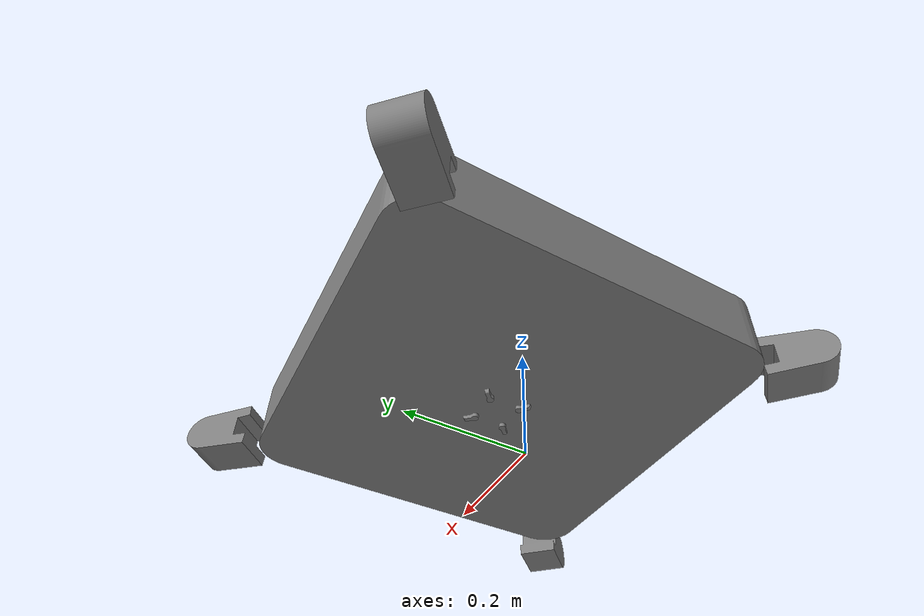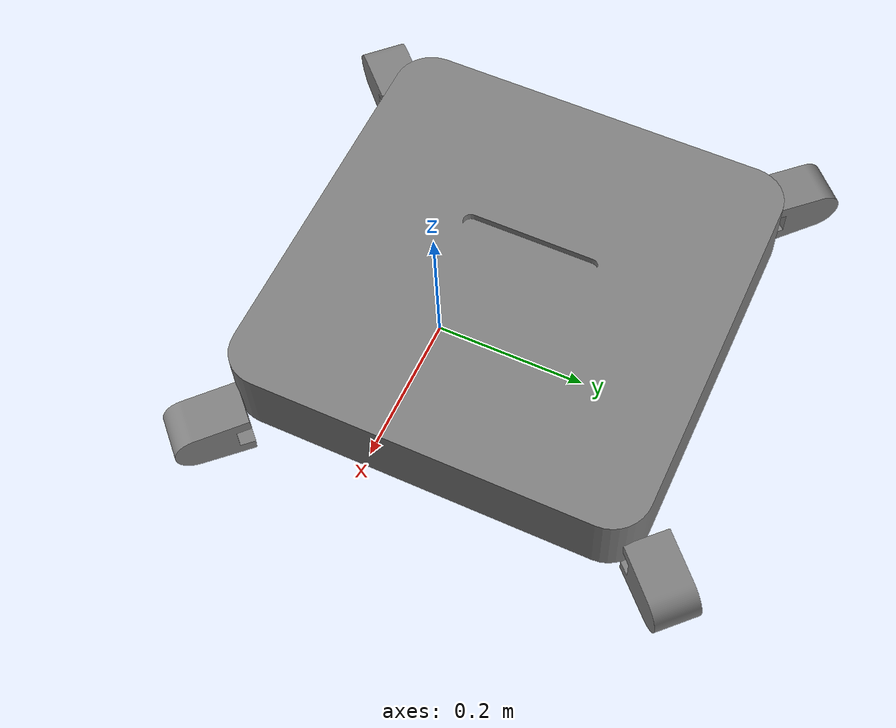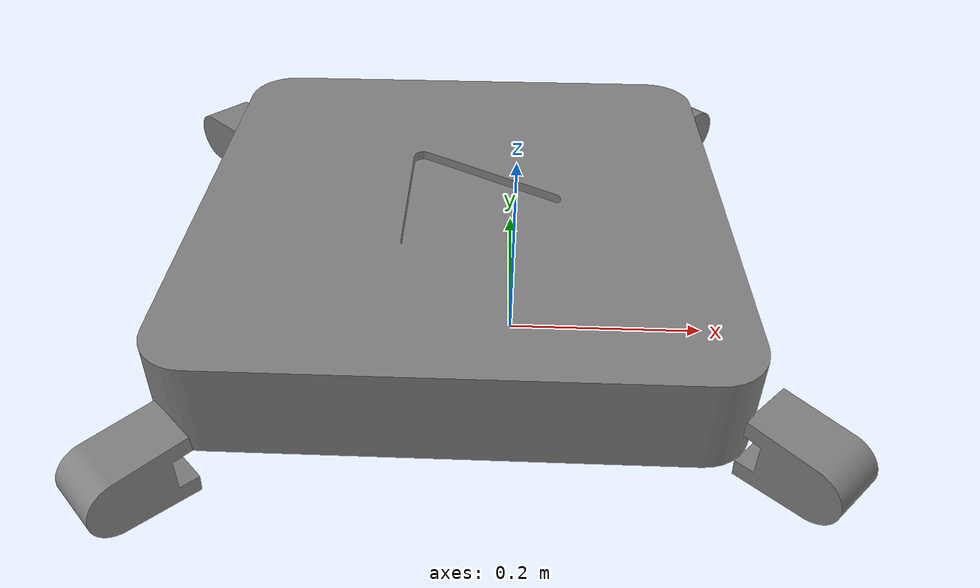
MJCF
<mujoco model="crawler">

    <compiler angle="radian" autolimits="true" />

    <default>

        <joint damping="0.0165" frictionloss="0.0005" solreflimit="0.04 1" solimplimit="0.9 0.95 0.005 0.5 2"/>

        <default class="visual">
            <geom type="mesh" density="0" contype="0" conaffinity="0" group="2"/>
        </default>

        <!--
            Generic collision default (fallback, not used directly).
        -->
        <default class="collision">
            <geom contype="0" conaffinity="0" group="3"/>
        </default>

        <default class="coxa_collision">
            <geom type="capsule" size="0.004" density="0" contype="0" conaffinity="0" group="3"/>
        </default>
        <default class="femur_collision">
            <geom type="capsule" size="0.004" density="0" contype="0" conaffinity="0" group="3"/>
        </default>
        <default class="tibia_collision">
            <geom type="capsule" size="0.004" density="0" contype="0" conaffinity="0" group="3"/>
        </default>
        <default class="foot_collision">
            <geom type="sphere" size="0.004" density="0" contype="0" conaffinity="0" group="3" friction="0.6 0.005 0.0001"/>
        </default>
    </default>

    <asset>
        <mesh name="base" file="assets/base.stl" scale="0.001 0.001 0.001" />
        <mesh name="coxa" file="assets/coxa.stl" scale="0.001 0.001 0.001" />
        <mesh name="femur" file="assets/femur.stl" scale="0.001 0.001 0.001" />
        <mesh name="tibia" file="assets/tibia.stl" scale="0.001 0.001 0.001" />
        <mesh name="foot" file="assets/foot.stl" scale="0.001 0.001 0.001" />
    </asset>

    <worldbody>
        <light directional="true" pos="-0.5 0.5 3" dir="0 0 -1" />

        <body name="base" pos="-0.054909463967939325 0.08112311588670991 0.008962584682672215" euler="1.0408340855860816e-17 0.0 1.5707963267948966">
            <freejoint/>
            <geom name="base_geom" class="visual" mesh="base" pos="0 0 0" euler="0 0 0" />
            <geom name="base_collision" type="box" size="0.03 0.03 0.006" pos="0 0 0.005" contype="1" conaffinity="1" group="3" density="0"/>
            <inertial mass="0.03183752205320129" pos="5.2041704279304066e-20 0.0 0.005" fullinertia="8.189823986042306e-06 8.189823986042374e-06 1.5849022604531328e-05 0.0 -6.69654402813043e-21 0.0" />
            <site name='imu' pos="0.0 0.0 0.005" size="0.0025"/>

            <!-- Leg 1 -->
            <body name="leg_1_coxa" pos="-0.032399494936611664 -0.032399494936611664 -0.0029999999999999927" euler="1.5707963267948966 0.7853981633974483 -0.0">
                <joint name="base_leg_1_coxa" axis="-7.359808400080175e-18 -1.0 -7.359808400080175e-18" pos="0.013999589980845425 0.0030004153173277797 2.461305977216484e-07" range="-0.785 0.785"/>
                <geom name="leg_1_coxa_geom" class="visual" mesh="coxa" pos="0 0 0" euler="0 0 0" />
                <geom name="leg_1_coxa_collision" class="coxa_collision"  fromto="0 0 0  0 0.01 0.009"/>
                <inertial mass="0.0016636915418405342" pos="0.005402213314214328 0.0036464257221408693 2.6836994660080788e-20" fullinertia="4.586889185531361e-08 7.612500620758773e-08 1.0868793704222074e-07 3.049707004869702e-08 -1.0234594336425319e-22 1.8584872267202095e-22" />

                <body name="leg_1_femur" pos="0.0 0.01 0.008999999999999979" euler="-3.141592653589793 -5.416677968589072e-35 -3.141592653589793">
                    <joint name="leg_1_coxa_leg_1_femur" axis="0.0 -7.359810677565174e-18 -1.0000003094489511" pos="-2.899269141557782e-07 4.153173277822884e-07 0.006000206903608923" range="-1.571 1.571"/>
                    <geom name="leg_1_femur_geom" class="visual" mesh="femur" pos="0 0 0" euler="0 0 0"/>
                    <geom name="leg_1_femur_collision" class="femur_collision" fromto="0 0 0  0.040 0.005 0.012"/>
                    <inertial mass="0.0030435132319207776" pos="0.019999999999999962 -5.957195584254965e-20 0.0029999999999999975" fullinertia="3.3452497395266803e-08 5.936577901635802e-07 6.088492081673176e-07 -6.65363663241859e-23 2.0514079191315086e-22 -1.6834083995002578e-22" />

                    <body name="leg_1_tibia" pos="0.040000000000000036 0.004999999999999983 0.012000000000000033" euler="3.141592653589793 5.990253684472967e-34 1.5707963267948968">
                        <joint name="leg_1_femur_leg_1_tibia" axis="-3.925232361368103e-17 0.0 -1.0000003094489525" pos="0.004999584682672212 -3.357802766898806e-08 0.006000500203172275" range="-2.356 2.356"/>
                        <geom name="leg_1_tibia_geom" class="visual" mesh="tibia" pos="0 0 0" euler="0 0 0" />
                        <geom name="leg_1_tibia_collision" class="tibia_collision" fromto="0 0 0  0.004 -0.020 0.0024"/>
                        <inertial mass="0.0019283986370316592" pos="0.005000000000000001 -0.012764398664719852 0.0030000000000000027" fullinertia="2.1467634727372854e-07 1.7016537126271533e-08 2.201224925778106e-07 1.354676878604395e-22 -2.991081696422713e-23 2.0514079191315086e-22" />
                        <body name="leg_1_foot" pos="-8.881784197001253e-18 -2.220446049250313e-18 0.0" euler="1.5407439555097878e-33 -3.404814103916397e-17 -0.0">
                            <site name="leg_1_foot_site" pos="0.005 -0.035 0.003" size="0.004" rgba="1.0 0.0 0.0 0.0"/>
                            <geom name="leg_1_foot_geom" class="visual" mesh="foot" pos="0 0 0" euler="0 0 0" />
                            <geom name="leg_1_foot_collision" class="foot_collision"  pos="0.005 -0.035 0.003"/>
                            <inertial mass="0.0001920703606744696" pos="0.005000000000000003 -0.03479747916365943 0.0030000000000000027" fullinertia="1.1046714905624203e-09 1.199351575527259e-09 1.1516009020429307e-09 -2.22920568893446e-23 -3.605749637338491e-24 -6.617444900424221e-24" />
                        </body>
                    </body>
                </body>
            </body>

            <!-- Leg 2 -->
            <body name="leg_2_coxa" pos="-0.03296204818108482 0.03296204818108482 -0.0029999999999999905" euler="1.5707963267948966 -0.7853981633974483 -0.0">
                <joint name="base_leg_2_coxa" axis="-7.359808400080175e-18 -1.0 7.359808400080175e-18" pos="0.014795816558488634 0.003000415317327777 4.1001915457130346e-07" range="-0.785 0.785"/>
                <geom name="leg_2_coxa_geom" class="visual" mesh="coxa" pos="0 0 0" euler="0 0 0" />
                <geom name="leg_2_coxa_collision" class="coxa_collision"  fromto="0 0 0  0 0.01 0.009"/>
                <inertial mass="0.0016636915418405342" pos="0.005402213314214328 0.003646425722140868 -2.6836994660080776e-20" fullinertia="4.5868891855313303e-08 7.61250062075852e-08 1.0868793704222127e-07 3.0497070048696607e-08 -2.244525923222308e-25 1.5164096724961434e-22" />

                <body name="leg_2_femur" pos="4.440892098500626e-18 0.009999999999999998 0.008999999999999985" euler="-3.141592653589793 5.416677968589089e-35 -3.141592653589793">
                    <joint name="leg_2_coxa_leg_2_femur" axis="1.1102230246251565e-16 -7.359810677565137e-18 -1.0000003094489505" pos="-3.1426894131231914e-07 4.153173277822884e-07 0.006000043015052069" range="-1.571 1.571"/>
                    <geom name="leg_2_femur_geom" class="visual" mesh="femur" pos="0 0 0" euler="0 0 0" />
                    <geom name="leg_2_femur_collision" class="femur_collision" fromto="0 0 0  0.040 0.005 0.012"/>
                    <inertial mass="0.0030435132319207776" pos="0.01999999999999997 3.945200773885174e-19 0.0029999999999999905" fullinertia="3.3452497395270536e-08 5.936577901635853e-07 6.088492081673166e-07 -3.294230438681108e-22 -3.894366323899654e-21 -7.398282050074556e-22" />

                    <body name="leg_2_tibia" pos="0.039999999999999994 0.004999999999999993 0.011999999999999993" euler="-3.141592653589793 -1.1102230246251548e-16 1.5707963267948966">
                        <joint name="leg_2_femur_leg_2_tibia" axis="-1.2499003140340276e-17 -2.220446049250313e-16 -1.000000309448952" pos="0.004999584682672221 -9.236000512930923e-09 0.006000664091729092" range="-2.356 2.356"/>
                        <geom name="leg_2_tibia_geom" class="visual" mesh="tibia" pos="0 0 0" euler="0 0 0" />
                        <geom name="leg_2_tibia_collision" class="tibia_collision" fromto="0 0 0  0.004 -0.020 0.0024"/>
                        <inertial mass="0.0019283986370316592" pos="0.005000000000000006 -0.012764398664719854 0.0029999999999999975" fullinertia="2.146763472737279e-07 1.701653712627141e-08 2.2012249257781054e-07 -5.443817352644975e-22 -5.946114532333802e-22 2.5311726744122647e-22" />

                        <body name="leg_2_foot" pos="2.2204460492503132e-17 -4.4408920985006264e-17 5.329070518200751e-17" euler="-3.8857805861880494e-16 -3.5529595225747607e-16 1.479114197289397e-31">
                            <site name="leg_2_foot_site" pos="0.005 -0.035 0.003" size="0.004" rgba="1.0 0.0 0.0 0.0"/>
                            <geom name="leg_2_foot_geom" class="visual" mesh="foot" pos="0 0 0" euler="0 0 0" />
                            <geom name="leg_2_foot_collision" class="foot_collision"  pos="0.005 -0.035 0.003"/>
                            <inertial mass="0.0001920703606744696" pos="0.005000000000000001 -0.03479747916365933 0.002999999999999987" fullinertia="1.1046714905633483e-09 1.1993515755276933e-09 1.1516009020434375e-09 -1.8568583058364713e-23 -1.3138868584993138e-22 -2.870316725559006e-22" />
                        </body>
                    </body>
                </body>
            </body>

            <!-- Leg 3 -->
            <body name="leg_3_coxa" pos="0.03296204818108478 0.032962048181084835 -0.002999999999999954" euler="-1.5707963267948988 -0.7853981633974483 3.14159265358979">
                <joint name="base_leg_3_coxa" axis="1.3711258752665068e-15 -0.9999999999999993 1.4893062398964934e-15" pos="0.01479598044704546 0.0030004153173277606 -2.4613059776252404e-07" range="-0.785 0.785"/>
                <geom name="leg_3_coxa_geom" class="visual" mesh="coxa" pos="0 0 0" euler="0 0 0" />
                <geom name="leg_3_coxa_collision" class="coxa_collision"  fromto="0 0 0  0 0.01 0.009"/>
                <inertial mass="0.0016636915418405342" pos="0.0054022133142143216 0.003646425722140865 -5.4306445813034585e-18" fullinertia="4.586889185531828e-08 7.612500620759197e-08 1.0868793704222293e-07 3.04970700486967e-08 -1.7560289834817457e-21 -2.4241362231539835e-22" />

                <body name="leg_3_femur" pos="5.329070518200751e-17 0.009999999999999974 0.008999999999999894" euler="3.141592653589793 -1.6653345369377607e-16 -3.141592653589793">
                    <joint name="leg_3_coxa_leg_3_femur" axis="3.3306690738754696e-16 1.564270067285307e-15 -1.0000003094489502" pos="2.2894928306633746e-07 4.153173277763273e-07 0.005999992058023127" range="-1.571 1.571"/>
                    <geom name="leg_3_femur_geom" class="visual" mesh="femur" pos="0 0 0" euler="0 0 0" />
                    <geom name="leg_3_femur_collision" class="femur_collision" fromto="0 0 0  0.040 0.005 0.012"/>
                    <inertial mass="0.0030435132319207776" pos="0.019999999999999955 -6.588563709274796e-18 0.0030000000000000044" fullinertia="3.345249739526082e-08 5.93657790163591e-07 6.088492081673339e-07 -2.7621412898211638e-21 3.206152054255531e-21 -6.826604585221883e-23" />

                    <body name="leg_3_tibia" pos="0.040000000000000126 0.005000000000000009 0.012000000000000018" euler="3.141592653589793 -2.4560148940840263e-30 1.5707963267948961">
                        <joint name="leg_3_femur_leg_3_tibia" axis="1.873772050008584e-15 -2.7755575615628914e-15 -1.0000003094489514" pos="0.00499958468267229 1.5465255636485357e-07 0.006000007941976822" range="-2.356 2.356"/>
                        <geom name="leg_3_tibia_geom" class="visual" mesh="tibia" pos="0 0 0" euler="0 0 0" />
                        <geom name="leg_3_tibia_collision" class="tibia_collision" fromto="0 0 0  0.004 -0.020 0.0024"/>
                        <inertial mass="0.0019283986370316592" pos="0.005000000000000012 -0.012764398664719822 0.0029999999999999476" fullinertia="2.1467634727374146e-07 1.7016537126285996e-08 2.201224925778088e-07 -3.0227481031488494e-22 -6.916831638744122e-22 5.922613185879674e-22" />

                        <body name="leg_3_foot" pos="-7.105427357601002e-17 0.0 7.549516567451065e-17" euler="-1.6653345369377607e-16 -3.552959522574772e-16 3.944304526105059e-31">
                            <site name="leg_3_foot_site" pos="0.005 -0.035 0.003" size="0.004" rgba="1.0 0.0 0.0 0.0"/>
                            <geom name="leg_3_foot_geom" class="visual" mesh="foot" pos="0 0 0" euler="0 0 0" />
                            <geom name="leg_3_foot_collision" class="foot_collision"  pos="0.005 -0.035 0.003"/>
                            <inertial mass="0.0001920703606744696" pos="0.005000000000000022 -0.034797479163659266 0.0029999999999998834" fullinertia="1.104671490564618e-09 1.1993515755270787e-09 1.1516009020437775e-09 -1.879154791385824e-22 -1.13206891997754e-22 1.2740649384848007e-21" />
                        </body>
                    </body>
                </body>
            </body>

            <!-- Leg 4 -->
            <body name="leg_4_coxa" pos="0.032399494936611664 -0.03239949493661168 -0.0030000000000000027" euler="-1.5707963267948963 0.7853981633974483 3.141592653589793">
                <joint name="base_leg_4_coxa" axis="5.3083600073573343e-17 -0.9999999999999999 -1.708405344748565e-16" pos="0.013999753869402293 0.0030004153173277875 -4.100191545578025e-07" range="-0.785 0.785"/>
                <geom name="leg_4_coxa_geom" class="visual" mesh="coxa" pos="0 0 0" euler="0 0 0" />
                <geom name="leg_4_coxa_collision" class="coxa_collision"  fromto="0 0 0  0 0.01 0.009"/>
                <inertial mass="0.0016636915418405342" pos="0.005402213314214322 0.0036464257221408666 1.6235468603084673e-17" fullinertia="4.586889185531242e-08 7.612500620758517e-08 1.0868793704222049e-07 3.049707004869661e-08 -7.326349706502642e-22 1.585890245567385e-22" />

                <body name="leg_4_femur" pos="-3.552713678800501e-17 0.009999999999999998 0.008999999999999985" euler="-3.141592653589793 -4.58388920052009e-33 -3.141592653589793">
                    <joint name="leg_4_coxa_leg_4_femur" axis="2.220446049250313e-16 -5.627064213833046e-17 -1.0000003094489518" pos="2.532913101465501e-07 4.153173277895209e-07 0.006000155946580012" range="-1.571 1.571"/>
                    <geom name="leg_4_femur_geom" class="visual" mesh="femur" pos="0 0 0" euler="0 0 0" />
                    <geom name="leg_4_femur_collision" class="femur_collision" fromto="0 0 0  0.040 0.005 0.012"/>
                    <inertial mass="0.0030435132319207776" pos="0.020000000000000028 6.728537049698797e-19 0.0029999999999999957" fullinertia="3.3452497395268617e-08 5.936577901635997e-07 6.08849208167318e-07 5.505517592514806e-22 1.4789989352448133e-21 -8.158389149744732e-22" />

                    <body name="leg_4_tibia" pos="0.040000000000000084 0.004999999999999983 0.012000000000000028" euler="-3.141592653589793 -5.551115123125795e-17 1.5707963267948943">
                        <joint name="leg_4_femur_leg_4_tibia" axis="-1.5628744103669466e-18 -1.2212453270876722e-15 -1.0000003094489496" pos="0.004999584682672181 1.303105293561133e-07 0.005999844053419971" range="-2.356 2.356"/>
                        <geom name="leg_4_tibia_geom" class="visual" mesh="tibia" pos="0 0 0" euler="0 0 0" />
                        <geom name="leg_4_tibia_collision" class="tibia_collision" fromto="0 0 0  0.004 -0.020 0.0024"/>
                        <inertial mass="0.0019283986370316592" pos="0.004999999999999987 -0.01276439866471977 0.0029999999999999654" fullinertia="2.1467634727371245e-07 1.701653712626749e-08 2.2012249257780477e-07 -6.621443756658888e-22 -7.10141981706438e-22 -2.4881592825595072e-21" />

                        <body name="leg_4_foot" pos="0.0 -1.7763568394002506e-16 3.552713678800501e-17" euler="1.210947355928211e-30 -3.55295952257474e-16 -0.0">
                            <site name="leg_4_foot_site" pos="0.005 -0.035 0.003" size="0.004" rgba="1.0 0.0 0.0 0.0"/>
                            <geom name="leg_4_foot_geom" class="visual" mesh="foot" pos="0 0 0" euler="0 0 0" />
                            <geom name="leg_4_foot_collision" class="foot_collision"  pos="0.005 -0.035 0.003"/>
                            <inertial mass="0.0001920703606744696" pos="0.0050000000000000235 -0.03479747916365909 0.0029999999999999203" fullinertia="1.1046714905612196e-09 1.1993515755268476e-09 1.1516009020431244e-09 -5.1706272655911675e-22 -6.608877045506924e-23 1.478585344938564e-23" />
                        </body>
                    </body>
                </body>
            </body>

        </body>
    </worldbody>
</mujoco>
